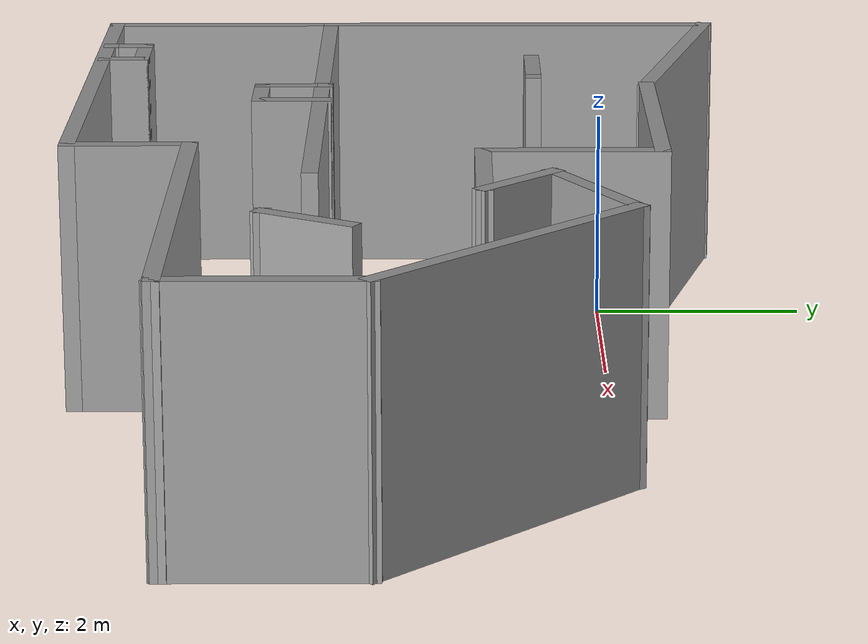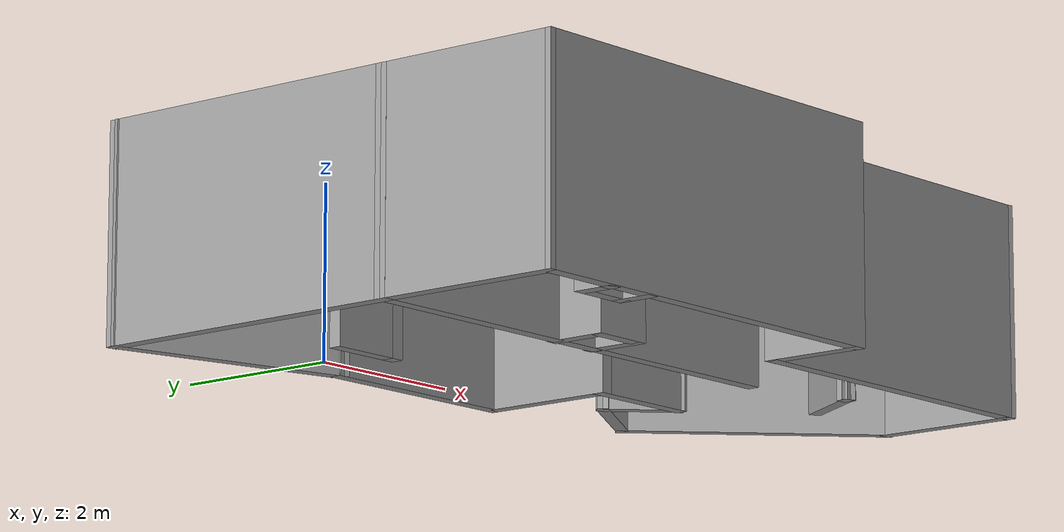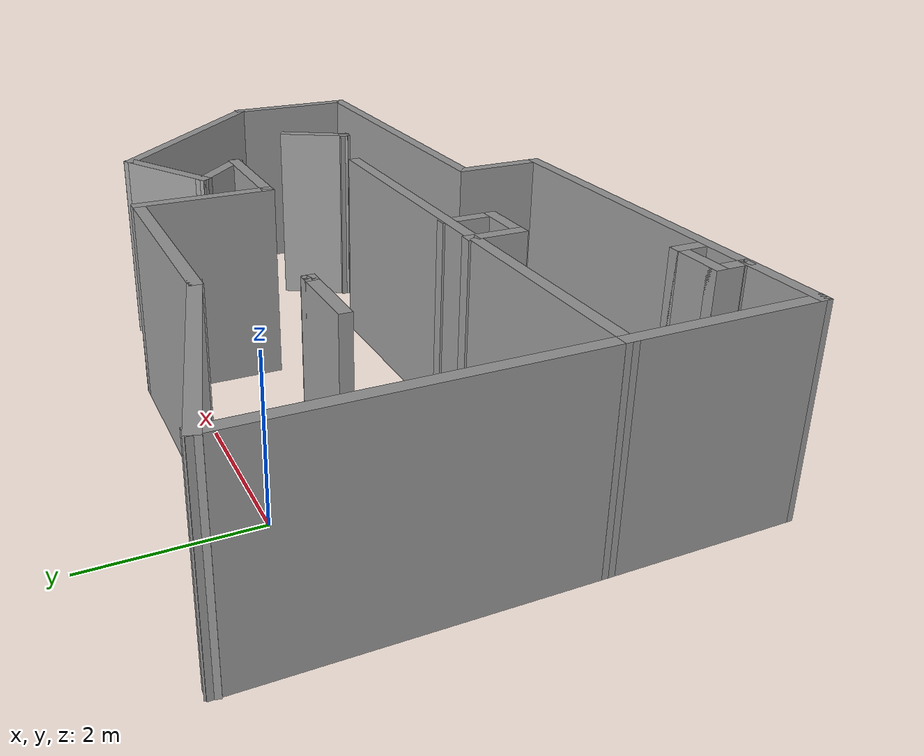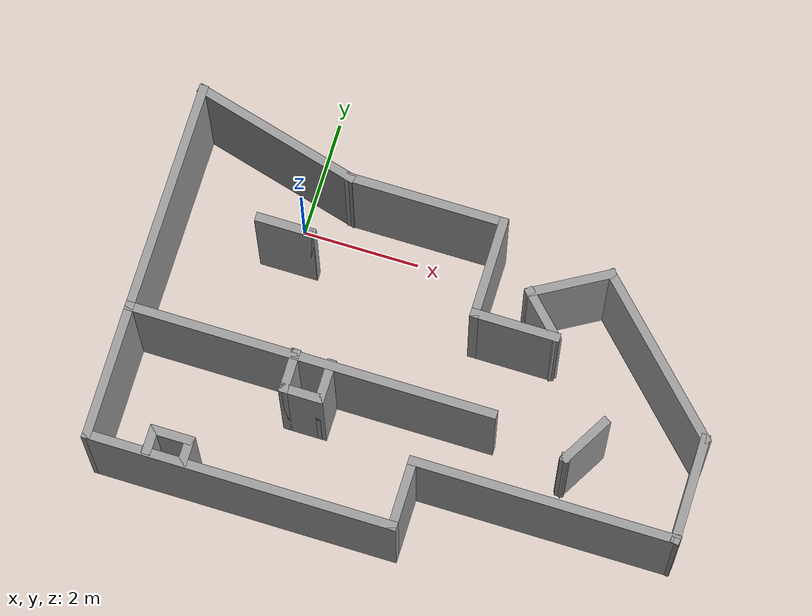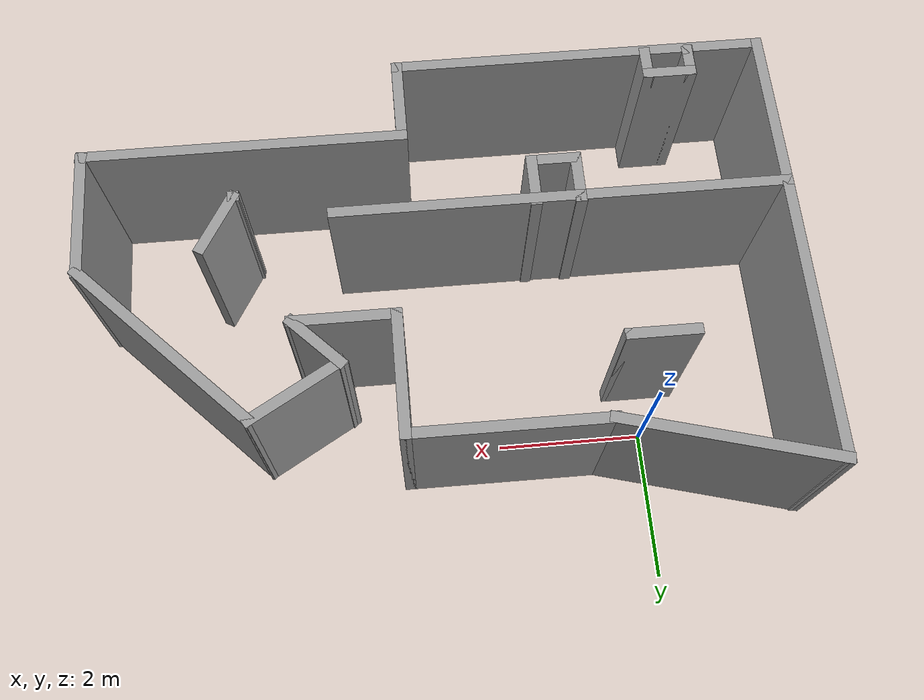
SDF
<?xml version='1.0'?>
<sdf version='1.7'>
  <model name='room'>
    <pose>2.706 -1.864 0 0 -0 0</pose>
    <link name='Wall_1'>
      <collision name='Wall_1_Collision'>
        <geometry>
          <box>
            <size>6.25 0.15 2.5</size>
          </box>
        </geometry>
        <pose>0 0 1.25 0 -0 0</pose>
      </collision>
      <visual name='Wall_1_Visual'>
        <pose>0 0 1.25 0 -0 0</pose>
        <geometry>
          <box>
            <size>6.25 0.15 2.5</size>
          </box>
        </geometry>
        <material>
          <script>
            <uri>file://media/materials/scripts/gazebo.material</uri>
            <name>Gazebo/Grey</name>
          </script>
          <ambient>1 1 1 1</ambient>
        </material>
        <meta>
          <layer>0</layer>
        </meta>
      </visual>
      <pose>-1.68861 -0.826864 0 0 -0 0</pose>
    </link>
    <link name='Wall_10'>
      <collision name='Wall_10_Collision'>
        <geometry>
          <box>
            <size>3.25 0.15 2.5</size>
          </box>
        </geometry>
        <pose>0 0 1.25 0 -0 0</pose>
      </collision>
      <visual name='Wall_10_Visual'>
        <pose>0 0 1.25 0 -0 0</pose>
        <geometry>
          <box>
            <size>3.25 0.15 2.5</size>
          </box>
        </geometry>
        <material>
          <script>
            <uri>file://media/materials/scripts/gazebo.material</uri>
            <name>Gazebo/Grey</name>
          </script>
          <ambient>1 1 1 1</ambient>
        </material>
        <meta>
          <layer>0</layer>
        </meta>
      </visual>
      <pose>3.62839 0.865527 0 0 -0 -0.785398</pose>
    </link>
    <link name='Wall_11'>
      <collision name='Wall_11_Collision'>
        <geometry>
          <box>
            <size>1.85 0.15 2.5</size>
          </box>
        </geometry>
        <pose>0 0 1.25 0 -0 0</pose>
      </collision>
      <visual name='Wall_11_Visual'>
        <pose>0 0 1.25 0 -0 0</pose>
        <geometry>
          <box>
            <size>1.85 0.15 2.5</size>
          </box>
        </geometry>
        <material>
          <script>
            <uri>file://media/materials/scripts/gazebo.material</uri>
            <name>Gazebo/Grey</name>
          </script>
          <ambient>1 1 1 1</ambient>
        </material>
        <meta>
          <layer>0</layer>
        </meta>
      </visual>
      <pose>4.7244 -1.08049 0 0 -0 -1.5708</pose>
    </link>
    <link name='Wall_15'>
      <collision name='Wall_15_Collision'>
        <geometry>
          <box>
            <size>0.159262 0.15 2.5</size>
          </box>
        </geometry>
        <pose>0 0 1.25 0 -0 0</pose>
      </collision>
      <visual name='Wall_15_Visual'>
        <pose>0 0 1.25 0 -0 0</pose>
        <geometry>
          <box>
            <size>0.159262 0.15 2.5</size>
          </box>
        </geometry>
        <material>
          <script>
            <uri>file://media/materials/scripts/gazebo.material</uri>
            <name>Gazebo/Grey</name>
          </script>
          <ambient>1 1 1 1</ambient>
        </material>
        <meta>
          <layer>0</layer>
        </meta>
      </visual>
      <pose>4.72359 -1.93505 0 0 -0 -1.74709</pose>
    </link>
    <link name='Wall_16'>
      <collision name='Wall_16_Collision'>
        <geometry>
          <box>
            <size>4.5 0.15 2.5</size>
          </box>
        </geometry>
        <pose>0 0 1.25 0 -0 0</pose>
      </collision>
      <visual name='Wall_16_Visual'>
        <pose>0 0 1.25 0 -0 0</pose>
        <geometry>
          <box>
            <size>4.5 0.15 2.5</size>
          </box>
        </geometry>
        <material>
          <script>
            <uri>file://media/materials/scripts/gazebo.material</uri>
            <name>Gazebo/Grey</name>
          </script>
          <ambient>1 1 1 1</ambient>
        </material>
        <meta>
          <layer>0</layer>
        </meta>
      </visual>
      <pose>2.54778 -1.93961 0 0 -0 3.14159</pose>
    </link>
    <link name='Wall_17'>
      <collision name='Wall_17_Collision'>
        <geometry>
          <box>
            <size>1.25 0.15 2.5</size>
          </box>
        </geometry>
        <pose>0 0 1.25 0 -0 0</pose>
      </collision>
      <visual name='Wall_17_Visual'>
        <pose>0 0 1.25 0 -0 0</pose>
        <geometry>
          <box>
            <size>1.25 0.15 2.5</size>
          </box>
        </geometry>
        <material>
          <script>
            <uri>file://media/materials/scripts/gazebo.material</uri>
            <name>Gazebo/Grey</name>
          </script>
          <ambient>1 1 1 1</ambient>
        </material>
        <meta>
          <layer>0</layer>
        </meta>
      </visual>
      <pose>0.372777 -2.48961 0 0 -0 -1.5708</pose>
    </link>
    <link name='Wall_18'>
      <collision name='Wall_18_Collision'>
        <geometry>
          <box>
            <size>5.25 0.15 2.5</size>
          </box>
        </geometry>
        <pose>0 0 1.25 0 -0 0</pose>
      </collision>
      <visual name='Wall_18_Visual'>
        <pose>0 0 1.25 0 -0 0</pose>
        <geometry>
          <box>
            <size>5.25 0.15 2.5</size>
          </box>
        </geometry>
        <material>
          <script>
            <uri>file://media/materials/scripts/gazebo.material</uri>
            <name>Gazebo/Grey</name>
          </script>
          <ambient>1 1 1 1</ambient>
        </material>
        <meta>
          <layer>0</layer>
        </meta>
      </visual>
      <pose>-2.17722 -3.03961 0 0 -0 3.14159</pose>
    </link>
    <link name='Wall_19'>
      <collision name='Wall_19_Collision'>
        <geometry>
          <box>
            <size>2.36277 0.15 2.5</size>
          </box>
        </geometry>
        <pose>0 0 1.25 0 -0 0</pose>
      </collision>
      <visual name='Wall_19_Visual'>
        <pose>0 0 1.25 0 -0 0</pose>
        <geometry>
          <box>
            <size>2.36277 0.15 2.5</size>
          </box>
        </geometry>
        <material>
          <script>
            <uri>file://media/materials/scripts/gazebo.material</uri>
            <name>Gazebo/Grey</name>
          </script>
          <ambient>1 1 1 1</ambient>
        </material>
        <meta>
          <layer>0</layer>
        </meta>
      </visual>
      <pose>-4.73292 -1.93324 0 0 -0 1.57594</pose>
    </link>
    <link name='Wall_21'>
      <collision name='Wall_21_Collision'>
        <geometry>
          <box>
            <size>0.16 0.15 2.5</size>
          </box>
        </geometry>
        <pose>0 0 1.25 0 -0 0</pose>
      </collision>
      <visual name='Wall_21_Visual'>
        <pose>0 0 1.25 0 -0 0</pose>
        <geometry>
          <box>
            <size>0.16 0.15 2.5</size>
          </box>
        </geometry>
        <material>
          <script>
            <uri>file://media/materials/scripts/gazebo.material</uri>
            <name>Gazebo/Grey</name>
          </script>
          <ambient>1 1 1 1</ambient>
        </material>
        <meta>
          <layer>0</layer>
        </meta>
      </visual>
      <pose>-3.73222 -3.00961 0 0 -0 0</pose>
    </link>
    <link name='Wall_22'>
      <collision name='Wall_22_Collision'>
        <geometry>
          <box>
            <size>0.5 0.15 2.5</size>
          </box>
        </geometry>
        <pose>0 0 1.25 0 -0 0</pose>
      </collision>
      <visual name='Wall_22_Visual'>
        <pose>0 0 1.25 0 -0 0</pose>
        <geometry>
          <box>
            <size>0.5 0.15 2.5</size>
          </box>
        </geometry>
        <material>
          <script>
            <uri>file://media/materials/scripts/gazebo.material</uri>
            <name>Gazebo/Grey</name>
          </script>
          <ambient>1 1 1 1</ambient>
        </material>
        <meta>
          <layer>0</layer>
        </meta>
      </visual>
      <pose>-3.72722 -2.83461 0 0 -0 1.5708</pose>
    </link>
    <link name='Wall_23'>
      <collision name='Wall_23_Collision'>
        <geometry>
          <box>
            <size>0.75 0.15 2.5</size>
          </box>
        </geometry>
        <pose>0 0 1.25 0 -0 0</pose>
      </collision>
      <visual name='Wall_23_Visual'>
        <pose>0 0 1.25 0 -0 0</pose>
        <geometry>
          <box>
            <size>0.75 0.15 2.5</size>
          </box>
        </geometry>
        <material>
          <script>
            <uri>file://media/materials/scripts/gazebo.material</uri>
            <name>Gazebo/Grey</name>
          </script>
          <ambient>1 1 1 1</ambient>
        </material>
        <meta>
          <layer>0</layer>
        </meta>
      </visual>
      <pose>-3.42722 -2.65961 0 0 -0 0</pose>
    </link>
    <link name='Wall_24'>
      <collision name='Wall_24_Collision'>
        <geometry>
          <box>
            <size>0.5 0.15 2.5</size>
          </box>
        </geometry>
        <pose>0 0 1.25 0 -0 0</pose>
      </collision>
      <visual name='Wall_24_Visual'>
        <pose>0 0 1.25 0 -0 0</pose>
        <geometry>
          <box>
            <size>0.5 0.15 2.5</size>
          </box>
        </geometry>
        <material>
          <script>
            <uri>file://media/materials/scripts/gazebo.material</uri>
            <name>Gazebo/Grey</name>
          </script>
          <ambient>1 1 1 1</ambient>
        </material>
        <meta>
          <layer>0</layer>
        </meta>
      </visual>
      <pose>-3.12722 -2.83461 0 0 -0 -1.5708</pose>
    </link>
    <link name='Wall_27'>
      <collision name='Wall_27_Collision'>
        <geometry>
          <box>
            <size>0.16 0.15 2.5</size>
          </box>
        </geometry>
        <pose>0 0 1.25 0 -0 0</pose>
      </collision>
      <visual name='Wall_27_Visual'>
        <pose>0 0 1.25 0 -0 0</pose>
        <geometry>
          <box>
            <size>0.16 0.15 2.5</size>
          </box>
        </geometry>
        <material>
          <script>
            <uri>file://media/materials/scripts/gazebo.material</uri>
            <name>Gazebo/Grey</name>
          </script>
          <ambient>1 1 1 1</ambient>
        </material>
        <meta>
          <layer>0</layer>
        </meta>
      </visual>
      <pose>-1.95222 -0.799607 0 0 -0 0</pose>
    </link>
    <link name='Wall_28'>
      <collision name='Wall_28_Collision'>
        <geometry>
          <box>
            <size>0.75 0.15 2.5</size>
          </box>
        </geometry>
        <pose>0 0 1.25 0 -0 0</pose>
      </collision>
      <visual name='Wall_28_Visual'>
        <pose>0 0 1.25 0 -0 0</pose>
        <geometry>
          <box>
            <size>0.75 0.15 2.5</size>
          </box>
        </geometry>
        <material>
          <script>
            <uri>file://media/materials/scripts/gazebo.material</uri>
            <name>Gazebo/Grey</name>
          </script>
          <ambient>1 1 1 1</ambient>
        </material>
        <meta>
          <layer>0</layer>
        </meta>
      </visual>
      <pose>-1.94722 -1.09961 0 0 -0 -1.5708</pose>
    </link>
    <link name='Wall_29'>
      <collision name='Wall_29_Collision'>
        <geometry>
          <box>
            <size>0.75 0.15 2.5</size>
          </box>
        </geometry>
        <pose>0 0 1.25 0 -0 0</pose>
      </collision>
      <visual name='Wall_29_Visual'>
        <pose>0 0 1.25 0 -0 0</pose>
        <geometry>
          <box>
            <size>0.75 0.15 2.5</size>
          </box>
        </geometry>
        <material>
          <script>
            <uri>file://media/materials/scripts/gazebo.material</uri>
            <name>Gazebo/Grey</name>
          </script>
          <ambient>1 1 1 1</ambient>
        </material>
        <meta>
          <layer>0</layer>
        </meta>
      </visual>
      <pose>-1.64722 -1.39961 0 0 -0 0</pose>
    </link>
    <link name='Wall_3'>
      <collision name='Wall_3_Collision'>
        <geometry>
          <box>
            <size>4 0.15 2.5</size>
          </box>
        </geometry>
        <pose>0 0 1.25 0 -0 0</pose>
      </collision>
      <visual name='Wall_3_Visual'>
        <pose>0 0 1.25 0 -0 0</pose>
        <geometry>
          <box>
            <size>4 0.15 2.5</size>
          </box>
        </geometry>
        <material>
          <script>
            <uri>file://media/materials/scripts/gazebo.material</uri>
            <name>Gazebo/Grey</name>
          </script>
          <ambient>1 1 1 1</ambient>
        </material>
        <meta>
          <layer>0</layer>
        </meta>
      </visual>
      <pose>-4.73861 1.09814 0 0 -0 1.5708</pose>
    </link>
    <link name='Wall_30'>
      <collision name='Wall_30_Collision'>
        <geometry>
          <box>
            <size>0.75 0.15 2.5</size>
          </box>
        </geometry>
        <pose>0 0 1.25 0 -0 0</pose>
      </collision>
      <visual name='Wall_30_Visual'>
        <pose>0 0 1.25 0 -0 0</pose>
        <geometry>
          <box>
            <size>0.75 0.15 2.5</size>
          </box>
        </geometry>
        <material>
          <script>
            <uri>file://media/materials/scripts/gazebo.material</uri>
            <name>Gazebo/Grey</name>
          </script>
          <ambient>1 1 1 1</ambient>
        </material>
        <meta>
          <layer>0</layer>
        </meta>
      </visual>
      <pose>-1.34722 -1.09961 0 0 -0 1.5708</pose>
    </link>
    <link name='Wall_32'>
      <collision name='Wall_32_Collision'>
        <geometry>
          <box>
            <size>1 0.15 2.5</size>
          </box>
        </geometry>
        <pose>0 0 1.25 0 -0 0</pose>
      </collision>
      <visual name='Wall_32_Visual'>
        <pose>0 0 1.25 0 -0 0</pose>
        <geometry>
          <box>
            <size>1 0.15 2.5</size>
          </box>
        </geometry>
        <material>
          <script>
            <uri>file://media/materials/scripts/gazebo.material</uri>
            <name>Gazebo/Grey</name>
          </script>
          <ambient>1 1 1 1</ambient>
        </material>
        <meta>
          <layer>0</layer>
        </meta>
      </visual>
      <pose>-2.75738 1.20704 0 0 -0 0</pose>
    </link>
    <link name='Wall_33'>
      <collision name='Wall_33_Collision'>
        <geometry>
          <box>
            <size>0.16 0.15 2.5</size>
          </box>
        </geometry>
        <pose>0 0 1.25 0 -0 0</pose>
      </collision>
      <visual name='Wall_33_Visual'>
        <pose>0 0 1.25 0 -0 0</pose>
        <geometry>
          <box>
            <size>0.16 0.15 2.5</size>
          </box>
        </geometry>
        <material>
          <script>
            <uri>file://media/materials/scripts/gazebo.material</uri>
            <name>Gazebo/Grey</name>
          </script>
          <ambient>1 1 1 1</ambient>
        </material>
        <meta>
          <layer>0</layer>
        </meta>
      </visual>
      <pose>-2.32738 1.20704 0 0 -0 0</pose>
    </link>
    <link name='Wall_35'>
      <collision name='Wall_35_Collision'>
        <geometry>
          <box>
            <size>0.16 0.15 2.5</size>
          </box>
        </geometry>
        <pose>0 0 1.25 0 -0 0</pose>
      </collision>
      <visual name='Wall_35_Visual'>
        <pose>0 0 1.25 0 -0 0</pose>
        <geometry>
          <box>
            <size>0.16 0.15 2.5</size>
          </box>
        </geometry>
        <material>
          <script>
            <uri>file://media/materials/scripts/gazebo.material</uri>
            <name>Gazebo/Grey</name>
          </script>
          <ambient>1 1 1 1</ambient>
        </material>
        <meta>
          <layer>0</layer>
        </meta>
      </visual>
      <pose>2.68087 -1.17607 0 0 -0 0</pose>
    </link>
    <link name='Wall_36'>
      <collision name='Wall_36_Collision'>
        <geometry>
          <box>
            <size>1 0.15 2.5</size>
          </box>
        </geometry>
        <pose>0 0 1.25 0 -0 0</pose>
      </collision>
      <visual name='Wall_36_Visual'>
        <pose>0 0 1.25 0 -0 0</pose>
        <geometry>
          <box>
            <size>1 0.15 2.5</size>
          </box>
        </geometry>
        <material>
          <script>
            <uri>file://media/materials/scripts/gazebo.material</uri>
            <name>Gazebo/Grey</name>
          </script>
          <ambient>1 1 1 1</ambient>
        </material>
        <meta>
          <layer>0</layer>
        </meta>
      </visual>
      <pose>2.89837 -0.808014 0 0 -0 1.0472</pose>
    </link>
    <link name='Wall_4'>
      <collision name='Wall_4_Collision'>
        <geometry>
          <box>
            <size>3 0.15 2.5</size>
          </box>
        </geometry>
        <pose>0 0 1.25 0 -0 0</pose>
      </collision>
      <visual name='Wall_4_Visual'>
        <pose>0 0 1.25 0 -0 0</pose>
        <geometry>
          <box>
            <size>3 0.15 2.5</size>
          </box>
        </geometry>
        <material>
          <script>
            <uri>file://media/materials/scripts/gazebo.material</uri>
            <name>Gazebo/Grey</name>
          </script>
          <ambient>1 1 1 1</ambient>
        </material>
        <meta>
          <layer>0</layer>
        </meta>
      </visual>
      <pose>-3.36217 2.65432 0 0 -0 -0.261799</pose>
    </link>
    <link name='Wall_5'>
      <collision name='Wall_5_Collision'>
        <geometry>
          <box>
            <size>2.75 0.15 2.5</size>
          </box>
        </geometry>
        <pose>0 0 1.25 0 -0 0</pose>
      </collision>
      <visual name='Wall_5_Visual'>
        <pose>0 0 1.25 0 -0 0</pose>
        <geometry>
          <box>
            <size>2.75 0.15 2.5</size>
          </box>
        </geometry>
        <material>
          <script>
            <uri>file://media/materials/scripts/gazebo.material</uri>
            <name>Gazebo/Grey</name>
          </script>
          <ambient>1 1 1 1</ambient>
        </material>
        <meta>
          <layer>0</layer>
        </meta>
      </visual>
      <pose>-0.685723 2.2855 0 0 -0 0</pose>
    </link>
    <link name='Wall_6'>
      <collision name='Wall_6_Collision'>
        <geometry>
          <box>
            <size>1.75 0.15 2.5</size>
          </box>
        </geometry>
        <pose>0 0 1.25 0 -0 0</pose>
      </collision>
      <visual name='Wall_6_Visual'>
        <pose>0 0 1.25 0 -0 0</pose>
        <geometry>
          <box>
            <size>1.75 0.15 2.5</size>
          </box>
        </geometry>
        <material>
          <script>
            <uri>file://media/materials/scripts/gazebo.material</uri>
            <name>Gazebo/Grey</name>
          </script>
          <ambient>1 1 1 1</ambient>
        </material>
        <meta>
          <layer>0</layer>
        </meta>
      </visual>
      <pose>0.614277 1.4855 0 0 -0 -1.5708</pose>
    </link>
    <link name='Wall_7'>
      <collision name='Wall_7_Collision'>
        <geometry>
          <box>
            <size>1.5 0.15 2.5</size>
          </box>
        </geometry>
        <pose>0 0 1.25 0 -0 0</pose>
      </collision>
      <visual name='Wall_7_Visual'>
        <pose>0 0 1.25 0 -0 0</pose>
        <geometry>
          <box>
            <size>1.5 0.15 2.5</size>
          </box>
        </geometry>
        <material>
          <script>
            <uri>file://media/materials/scripts/gazebo.material</uri>
            <name>Gazebo/Grey</name>
          </script>
          <ambient>1 1 1 1</ambient>
        </material>
        <meta>
          <layer>0</layer>
        </meta>
      </visual>
      <pose>1.28928 0.685502 0 0 -0 0</pose>
    </link>
    <link name='Wall_8'>
      <collision name='Wall_8_Collision'>
        <geometry>
          <box>
            <size>1 0.15 2.5</size>
          </box>
        </geometry>
        <pose>0 0 1.25 0 -0 0</pose>
      </collision>
      <visual name='Wall_8_Visual'>
        <pose>0 0 1.25 0 -0 0</pose>
        <geometry>
          <box>
            <size>1 0.15 2.5</size>
          </box>
        </geometry>
        <material>
          <script>
            <uri>file://media/materials/scripts/gazebo.material</uri>
            <name>Gazebo/Grey</name>
          </script>
          <ambient>1 1 1 1</ambient>
        </material>
        <meta>
          <layer>0</layer>
        </meta>
      </visual>
      <pose>1.66376 0.986022 0 0 -0 2.35619</pose>
    </link>
    <link name='Wall_9'>
      <collision name='Wall_9_Collision'>
        <geometry>
          <box>
            <size>1.5 0.15 2.5</size>
          </box>
        </geometry>
        <pose>0 0 1.25 0 -0 0</pose>
      </collision>
      <visual name='Wall_9_Visual'>
        <pose>0 0 1.25 0 -0 0</pose>
        <geometry>
          <box>
            <size>1.5 0.15 2.5</size>
          </box>
        </geometry>
        <material>
          <script>
            <uri>file://media/materials/scripts/gazebo.material</uri>
            <name>Gazebo/Grey</name>
          </script>
          <ambient>1 1 1 1</ambient>
        </material>
        <meta>
          <layer>0</layer>
        </meta>
      </visual>
      <pose>1.9478 1.62404 0 0 -0 0.523599</pose>
    </link>
    <static>1</static>
  </model>
</sdf>
